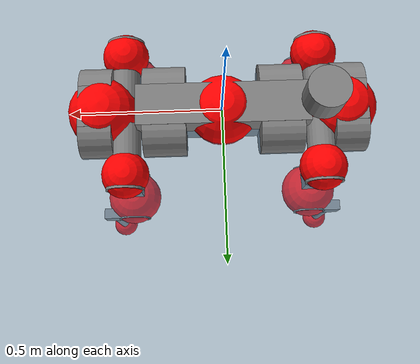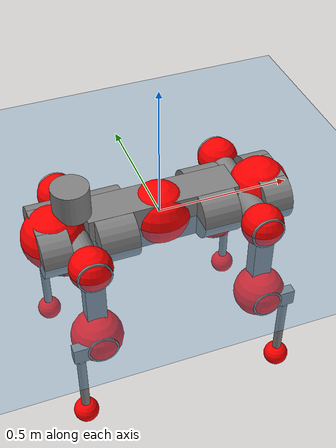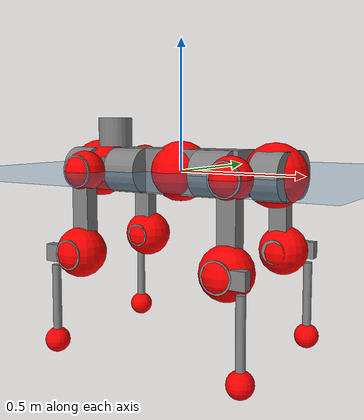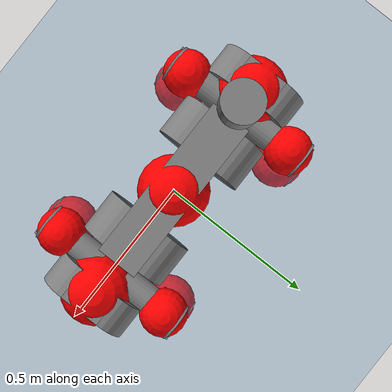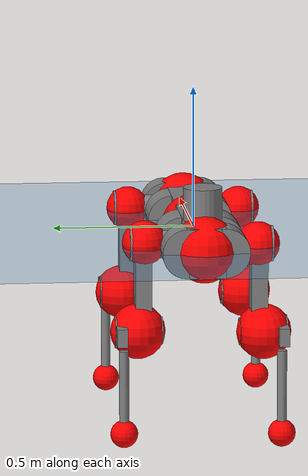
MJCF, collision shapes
<mujoco model="anymal_c">
  <compiler angle="radian" assetdir="assets" balanceinertia="true" inertiafromgeom="false"/>

  <option timestep="0.005" density="1.2" viscosity="2e-05"/>

  <size nkey="1"/>

  <visual>
    <quality shadowsize="8192"/>
    <map shadowclip="0.5"/>
  </visual>

  <default>
    <default class="/">
      <material specular="0" shininess="0.25"/>
      <geom contype="0" conaffinity="0" group="1" solref="-1000 -80"/>
      <site size="0.01 0.005 0.005" group="5"/>
      <general forcelimited="true" forcerange="-80 80" biastype="affine" gainprm="80" biasprm="0 -80 -2"/>
      <default class="anymal_c">
        <joint armature="0.01" damping="0.01" frictionloss="0.1"/>
        <default class="visual">
          <geom type="mesh" group="2"/>
          <default class="visual_zflip"/>
        </default>
        <default class="collision">
          <geom type="cylinder" group="3"/>
          <default class="foot">
            <geom size="0.03 0 0" type="sphere" condim="6" priority="1" friction="0.8 0.02 0.01" solimp="0.015 1 0.03"/>
          </default>
        </default>
      </default>
      <default class="reward_collision_sphere">
        <geom group="5" rgba="1 0 0 1"/>
      </default>
    </default>
  </default>

  <asset>
    <texture type="skybox" colorspace="auto" name="//unnamed_texture_0" builtin="gradient" rgb1="0.95 0.95 0.95" rgb2="0.95 0.95 0.95" width="100" height="600"/>
    <texture type="2d" colorspace="auto" name="texplane" builtin="checker" rgb1="0.345 0.575 0.748" rgb2="0.345 0.575 0.748" markrgb="1 1 1" width="512" height="512"/>
    <texture type="2d" colorspace="linear" name="base" file="base.png"/>
    <texture type="2d" colorspace="linear" name="top_shell" file="top_shell.png"/>
    <texture type="2d" colorspace="linear" name="bottom_shell" file="bottom_shell.png"/>
    <texture type="2d" colorspace="linear" name="remote" file="remote.png"/>
    <texture type="2d" colorspace="linear" name="hatch" file="hatch.png"/>
    <texture type="2d" colorspace="linear" name="handle" file="handle.png"/>
    <texture type="2d" colorspace="linear" name="face" file="face.png"/>
    <texture type="2d" colorspace="linear" name="battery" file="battery.png"/>
    <texture type="2d" colorspace="linear" name="lidar_cage" file="lidar_cage.png"/>
    <texture type="2d" colorspace="linear" name="depth_camera" file="depth_camera.png"/>
    <texture type="2d" colorspace="linear" name="wide_angle_camera" file="wide_angle_camera.png"/>
    <texture type="2d" colorspace="linear" name="lidar" file="lidar.png"/>
    <texture type="2d" colorspace="linear" name="drive" file="drive.png"/>
    <texture type="2d" colorspace="linear" name="hip_l" file="hip_l.png"/>
    <texture type="2d" colorspace="linear" name="shank_l" file="shank_l.png"/>
    <texture type="2d" colorspace="linear" name="foot" file="foot.png"/>
    <texture type="2d" colorspace="linear" name="thigh" file="thigh.png"/>
    <texture type="2d" colorspace="linear" name="shank_r" file="shank_r.png"/>
    <texture type="2d" colorspace="linear" name="hip_r" file="hip_r.png"/>
    <material name="MatPlane" class="/" texture="texplane" texuniform="true" texrepeat="2 2" specular="0.9" shininess="0.5"/>
    <material name="black_plastic" class="/" rgba="0.007 0.007 0.007 1"/>
    <material name="green" class="/" rgba="0.052 0.178 0.033 1"/>
    <material name="red" class="/" rgba="0.178 0.006 0.005 1"/>
    <material name="yellow" class="/" rgba="0.178 0.119 0.006 1"/>
    <material name="lwl" class="/" rgba="0.8 0.8 0.8 1"/>
    <material name="base" class="/" texture="base"/>
    <material name="top_shell" class="/" texture="top_shell"/>
    <material name="bottom_shell" class="/" texture="bottom_shell"/>
    <material name="hip_l" class="/" texture="hip_l"/>
    <material name="thigh" class="/" texture="thigh"/>
    <material name="shank_l" class="/" texture="shank_l"/>
    <material name="foot" class="/" texture="foot"/>
    <material name="hip_r" class="/" texture="hip_r"/>
    <material name="shank" class="/" texture="shank_r"/>
    <material name="hatch" class="/" texture="hatch"/>
    <material name="remote" class="/" texture="remote"/>
    <material name="handle" class="/" texture="handle"/>
    <material name="face" class="/" texture="face"/>
    <material name="depth_camera" class="/" texture="depth_camera"/>
    <material name="wide_angle_camera" class="/" texture="wide_angle_camera"/>
    <material name="battery" class="/" texture="battery"/>
    <material name="lidar_cage" class="/" texture="lidar_cage"/>
    <material name="lidar" class="/" texture="lidar"/>
    <material name="drive" class="/" texture="drive"/>
    <mesh name="base_0" class="/" file="base_0.obj"/>
    <mesh name="base_1" class="/" file="base_1.obj"/>
    <mesh name="base_2" class="/" file="base_2.obj"/>
    <mesh name="base_3" class="/" file="base_3.obj"/>
    <mesh name="base_4" class="/" file="base_4.obj"/>
    <mesh name="base_5" class="/" file="base_5.obj"/>
    <mesh name="top_shell" class="/" file="top_shell.obj"/>
    <mesh name="bottom_shell" class="/" file="bottom_shell.obj"/>
    <mesh name="remote" class="/" file="remote.obj"/>
    <mesh name="handle" class="/" file="handle.obj"/>
    <mesh name="face" class="/" file="face.obj"/>
    <mesh name="wide_angle_camera" class="/" file="wide_angle_camera.obj"/>
    <mesh name="depth_camera" class="/" file="depth_camera.obj"/>
    <mesh name="battery" class="/" file="battery.obj"/>
    <mesh name="lidar_cage" class="/" file="lidar_cage.obj"/>
    <mesh name="lidar" class="/" file="lidar.obj"/>
    <mesh name="drive" class="/" file="drive.obj"/>
    <mesh name="hip_l" class="/" file="hip_l.obj"/>
    <mesh name="thigh" class="/" file="thigh.obj"/>
    <mesh name="shank_l" class="/" file="shank_l.obj"/>
    <mesh name="foot" class="/" file="foot.obj"/>
    <mesh name="hip_r" class="/" file="hip_r.obj"/>
    <mesh name="hatch" class="/" file="hatch.obj"/>
    <mesh name="shank_r" class="/" file="shank_r.obj"/>
  </asset>

  <worldbody>
    <geom name="floor" class="/" size="100 100 0.125" type="plane" group="0" material="MatPlane"/>
    <light name="toplight_shadow" class="/" pos="0 0 5" dir="0.0990148 0.0990148 -0.990148" type="directional" ambient="0.04 0.04 0.04" diffuse="0.55 0.55 0.55" specular="0.12 0.12 0.12"/>
    <light name="toplight_fill" class="/" pos="0 0 5" dir="0.0990148 0.0990148 -0.990148" type="directional" castshadow="false" ambient="0.04 0.04 0.04" diffuse="0.3 0.3 0.3" specular="0.08 0.08 0.08"/>
    <body name="trunk" childclass="anymal_c" pos="-0.00119052 -0.000567122 0.000251659" quat="1 -0.000228479 -0.000229806 0.000223827">
      <inertial pos="0.0110186 0.00583685 0.0557724" quat="0.506234 0.497396 0.496527 0.499786" mass="15.7933" diaginertia="0.323579 0.410891 0.363047"/>
      <joint name="//unnamed_joint_0" type="free" armature="0" damping="0" frictionloss="0"/>
      <geom name="//unnamed_geom_1" class="visual" material="green" mesh="base_0"/>
      <geom name="//unnamed_geom_2" class="visual" material="yellow" mesh="base_1"/>
      <geom name="//unnamed_geom_3" class="visual" material="red" mesh="base_2"/>
      <geom name="//unnamed_geom_4" class="visual" material="black_plastic" mesh="base_3"/>
      <geom name="//unnamed_geom_5" class="visual" material="lwl" mesh="base_4"/>
      <geom name="//unnamed_geom_6" class="visual" material="base" mesh="base_5"/>
      <geom name="trunk_1" class="collision" size="0.279493 0.0674639 0.0867393" type="box"/>
      <geom name="trunk_2" class="collision" size="0.0867393 0.0698733" pos="0.18944 0.0644036 0" quat="0.707107 0 0.707107 0"/>
      <geom name="trunk_3" class="collision" size="0.0867393 0.0698733" pos="-0.18944 0.0644036 0" quat="0.707107 0 0.707107 0"/>
      <geom name="trunk_4" class="collision" size="0.0867393 0.0698733" pos="0.18944 -0.0644036 0" quat="0.707107 0 0.707107 0"/>
      <geom name="trunk_5" class="collision" size="0.0867393 0.0698733" pos="-0.18944 -0.0644036 0" quat="0.707107 0 0.707107 0"/>
      <geom name="//unnamed_geom_12" class="visual" material="top_shell" mesh="top_shell"/>
      <geom name="//unnamed_geom_13" class="visual" material="bottom_shell" mesh="bottom_shell"/>
      <geom name="//unnamed_geom_14" class="visual" material="remote" mesh="remote"/>
      <geom name="//unnamed_geom_15" class="visual" material="handle" mesh="handle"/>
      <geom name="//unnamed_geom_16" class="visual" pos="0.361025 0 0" quat="1 0 0 0" material="face" mesh="face"/>
      <geom name="trunk_6" class="collision" size="0.0530073 0.0674639 0.0867393" pos="0.408929 0 0" type="box"/>
      <geom name="//unnamed_geom_18" class="collision" size="0.0867393 0.0530073" pos="0.408929 0.0644036 0" quat="0.707107 0 0.707107 0"/>
      <geom name="//unnamed_geom_19" class="collision" size="0.0867393 0.0530073" pos="0.408929 -0.0644036 0" quat="0.707107 0 0.707107 0"/>
      <geom name="//unnamed_geom_20" class="visual" pos="0.402101 0 -0.0338704" quat="0.965926 0 0.258819 0" material="depth_camera" mesh="depth_camera"/>
      <geom name="//unnamed_geom_21" class="visual" pos="0.446817 0 0.016471" material="wide_angle_camera" mesh="wide_angle_camera"/>
      <geom name="//unnamed_geom_22" class="visual_zflip" pos="-0.361025 0 0" quat="0 0 0 1" material="face" mesh="face"/>
      <geom name="trunk_7" class="collision" size="0.0530073 0.0674639 0.0867393" pos="-0.408929 0 0" quat="0 0 0 1" type="box"/>
      <geom name="//unnamed_geom_24" class="collision" size="0.0867393 0.0530073" pos="-0.408929 -0.0644036 0" quat="0 -0.707107 0 0.707107"/>
      <geom name="//unnamed_geom_25" class="collision" size="0.0867393 0.0530073" pos="-0.408929 0.0644036 0" quat="0 -0.707107 0 0.707107"/>
      <geom name="//unnamed_geom_26" class="visual" pos="-0.402101 0 -0.0338704" quat="0 -0.258819 0 0.965926" material="depth_camera" mesh="depth_camera"/>
      <geom name="//unnamed_geom_27" class="visual_zflip" pos="-0.446817 0 0.016471" quat="0 0 0 1" material="wide_angle_camera" mesh="wide_angle_camera"/>
      <geom name="//unnamed_geom_28" class="visual" material="battery" mesh="battery"/>
      <geom name="//unnamed_geom_29" class="visual" pos="0 0.0710005 0.0302203" quat="0.683013 -0.183013 0.183013 0.683013" material="depth_camera" mesh="depth_camera"/>
      <geom name="//unnamed_geom_30" class="visual" pos="0 -0.0710005 0.0302203" quat="0.683013 0.183013 0.183013 -0.683013" material="depth_camera" mesh="depth_camera"/>
      <geom name="//unnamed_geom_31" class="visual" pos="-0.31704 0 0.0808698" quat="1 0 0 0" material="lidar_cage" mesh="lidar_cage"/>
      <geom name="trunk_8" class="collision" size="0.0674639 0.0578262" pos="-0.31704 0 0.146886"/>
      <geom name="//unnamed_geom_33" class="visual" pos="-0.31704 1.92755e-05 0.156458" quat="0.707107 0 0 -0.707107" material="lidar" mesh="lidar"/>
      <geom name="//unnamed_geom_34" class="visual" pos="0.261209 0.0957494 -3.10878e-09" quat="0.258819 0.965926 0 0" material="drive" mesh="drive"/>
      <geom name="//unnamed_geom_35" class="visual" pos="0.261209 -0.0957494 3.10878e-09" quat="0.258819 -0.965926 0 0" material="drive" mesh="drive"/>
      <geom name="//unnamed_geom_36" class="visual" pos="-0.261209 0.0957494 3.10878e-09" quat="0 0 0.965926 -0.258819" material="drive" mesh="drive"/>
      <geom name="//unnamed_geom_37" class="visual" pos="-0.261209 -0.0957494 -3.10878e-09" quat="0 0 -0.965926 -0.258819" material="drive" mesh="drive"/>
      <geom name="//unnamed_geom_38" class="visual" pos="0.101035 0 0.0803196" quat="1 0 0 0" material="hatch" mesh="hatch"/>
      <geom name="//unnamed_geom_39" class="reward_collision_sphere" size="0.115652"/>
      <geom name="//unnamed_geom_40" class="reward_collision_sphere" size="0.115652" pos="0.391945 0 0"/>
      <geom name="//unnamed_geom_41" class="reward_collision_sphere" size="0.115652" pos="-0.391945 0 0"/>
      <site name="imu" pos="0.181968 0.00797593 0.0853837" size="0.0096377"/>
      <camera name="track" pos="0 -1.8401 0" quat="0.707107 0.707107 0 0" mode="trackcom"/>
      <camera name="ego_camera" pos="0.391945 0 -0.0440108" quat="-0.5 -0.5 0.5 0.5"/>
      <body name="LF_HIP" pos="0.265622 0.100475 0.00130427" quat="0.257952 0.966157 -0.000713633 0.000109791">
        <inertial pos="0.0498147 -0.00977072 -0.0111351" quat="-0.130003 0.708691 -0.137533 0.679662" mass="2.71316" diaginertia="0.00329263 0.00382475 0.00584292"/>
        <joint name="LF_HAA" pos="0 0 0" axis="0.999903 0.0126869 0.00575816" stiffness="0.014981" range="-0.712624 0.479836" armature="0.0104628" damping="0" frictionloss="0.111648"/>
        <geom name="//unnamed_geom_42" class="visual" pos="0 -0.000182875 3.00371e-05" quat="0.258819 -0.965926 0 0" material="hip_l" mesh="hip_l"/>
        <geom name="//unnamed_geom_43" class="visual" pos="0.0521722 -0.0639277 -0.0382417" quat="0.183013 -0.683013 0.683013 0.183013" material="drive" mesh="drive"/>
        <geom name="//unnamed_geom_44" class="collision" size="0.0481885 0.0674639" pos="0.0521722 -0.0110036 -0.00759736" quat="-0.353553 -0.612372 0.612372 -0.353553"/>
        <body name="LF_THIGH" pos="0.0541857 -0.0743714 -0.0472431" quat="0.182276 -0.685172 0.681454 0.18148">
          <inertial pos="0.0289942 -0.000252348 -0.272134" quat="0.994237 0.0118485 -0.0808654 0.0693743" mass="2.7948" diaginertia="0.0148765 0.0211408 0.00662738"/>
          <joint name="LF_HFE" pos="0 0 0" axis="0.999993 0.00152293 -0.00350164" stiffness="0.00805688" range="-3.25894 3.0785" armature="0.00913202" damping="0" frictionloss="0.106249"/>
          <geom name="//unnamed_geom_45" class="visual" pos="-0.000976161 -1.5382e-06 0" quat="0.707107 0 0 -0.707107" material="thigh" mesh="thigh"/>
          <geom name="//unnamed_geom_46" class="collision" size="0.062645 0.0385508" pos="0.0348395 0 0" quat="0.5 0.5 -0.5 -0.5"/>
          <geom name="//unnamed_geom_47" class="collision" size="0.0361414 0.0289131 0.136194" pos="0.0261297 0 -0.155483" quat="0.707107 0 0 -0.707107" type="box"/>
          <geom name="//unnamed_geom_48" class="visual" pos="0.0873601 0 -0.313577" quat="1 0 0 0" material="drive" mesh="drive"/>
          <geom name="//unnamed_geom_49" class="collision" size="0.0481885 0.0674639" pos="0.0263909 0 -0.313577" quat="0.707107 0 0.707107 0"/>
          <geom name="//unnamed_geom_50" class="reward_collision_sphere" size="0.0771016" pos="0.0217747 0 0"/>
          <body name="LF_SHANK" pos="0.0878312 -0.00624547 -0.31691" quat="1 -0.000375287 -0.000141959 0.000652461">
            <inertial pos="0.00463483 -0.0546234 -0.0876489" quat="0.993008 -0.116097 -0.00363723 -0.0210535" mass="0.514887" diaginertia="0.00530136 0.00610592 0.00179825"/>
            <joint name="LF_KFE" pos="0 0 0" axis="0.999906 -0.00739533 0.0115204" stiffness="0.0281055" range="-3.20006 3.15023" armature="0.00981301" damping="0.0216004" frictionloss="0.100257"/>
            <geom name="//unnamed_geom_51" class="visual" pos="-0.000318305 -0.00169722 0" quat="0.707107 0 0 -0.707107" material="shank_l" mesh="shank_l"/>
            <geom name="LF_kfe_act" class="collision" size="0.0578262 0.0192754" pos="0.0174198 0 0" quat="0.5 0.5 -0.5 -0.5"/>
            <geom name="//unnamed_geom_53" class="collision" size="0.0554158 0.0325272 0.0183116" pos="0.0174198 -0.052902 0" quat="0.5 0.5 -0.5 -0.5" type="box"/>
            <geom name="//unnamed_geom_54" class="visual" pos="0.0113665 -0.0814655 -0.371858" quat="0.382683 0 0 -0.92388" material="foot" mesh="foot"/>
            <geom name="LF_calf" class="collision" size="0.016866 0.136134" pos="0.0113664 -0.0809185 -0.185929" quat="0.707107 0 0 -0.707107"/>
            <geom name="LF_foot" class="foot" size="0.0315186" pos="0.0113664 -0.0809185 -0.347102" quat="0.707107 0 0 -0.707107"/>
            <geom name="//unnamed_geom_57" class="reward_collision_sphere" size="0.096377" pos="-0.0435494 0 0"/>
            <geom name="//unnamed_geom_58" class="reward_collision_sphere" size="0.0481885" pos="0.0113664 -0.0809185 -0.347102"/>
            <site name="LF_foot" class="foot" pos="0.0113664 -0.0809185 -0.347102" quat="0.707107 0 0 -0.707107" size="0.0096377"/>
          </body>
        </body>
      </body>
      <body name="RF_HIP" pos="0.268497 -0.0952224 -0.0017316" quat="0.259157 -0.965835 9.50408e-06 -0.000177843">
        <inertial pos="0.0521814 0.0231719 -0.00609934" quat="0.131764 0.704546 0.142383 0.682628" mass="2.48338" diaginertia="0.00318725 0.00304088 0.00572064"/>
        <joint name="RF_HAA" pos="0 0 0" axis="0.999705 -0.0242212 -0.00175962" stiffness="0.00208198" range="-0.453776 0.734284" armature="0.00926983" damping="0.0275244" frictionloss="0.0964965"/>
        <geom name="//unnamed_geom_59" class="visual" pos="0 0.000182874 3.0037e-05" quat="0.258819 0.965926 0 0" material="hip_r" mesh="hip_r"/>
        <geom name="//unnamed_geom_60" class="visual" pos="0.0521722 0.0639277 -0.0382417" quat="0.183013 0.683013 0.683013 -0.183013" material="drive" mesh="drive"/>
        <geom name="//unnamed_geom_61" class="collision" size="0.0481885 0.0674639" pos="0.0521722 0.0110036 -0.00759736" quat="-0.353553 0.612372 0.612372 0.353553"/>
        <body name="RF_THIGH" pos="0.0505042 0.0683304 -0.0406533" quat="0.181758 0.681721 0.684185 -0.184691">
          <inertial pos="0.0198102 -0.000739881 -0.268278" quat="0.993151 0.00363875 -0.0833651 0.081787" mass="2.53205" diaginertia="0.0153326 0.020531 0.00601744"/>
          <joint name="RF_HFE" pos="0 0 0" axis="0.999976 -0.00346232 0.00602805" stiffness="0.0149847" range="-3.13603 3.10676" armature="0.0109145" damping="0.00928032" frictionloss="0.094016"/>
          <geom name="//unnamed_geom_62" class="visual" pos="-0.000976161 -1.5382e-06 0" quat="0.707107 0 0 -0.707107" material="thigh" mesh="thigh"/>
          <geom name="//unnamed_geom_63" class="collision" size="0.062645 0.0385508" pos="0.0348395 0 0" quat="0.5 0.5 0.5 0.5"/>
          <geom name="//unnamed_geom_64" class="collision" size="0.0361414 0.0289131 0.136194" pos="0.0261297 0 -0.155483" quat="0.707107 0 0 0.707107" type="box"/>
          <geom name="//unnamed_geom_65" class="visual" pos="0.0873601 0 -0.313577" quat="1 0 0 0" material="drive" mesh="drive"/>
          <geom name="//unnamed_geom_66" class="collision" size="0.0481885 0.0674639" pos="0.0263909 0 -0.313577" quat="0.707107 0 0.707107 0"/>
          <geom name="//unnamed_geom_67" class="reward_collision_sphere" size="0.0771016" pos="0.0217747 0 0"/>
          <body name="RF_SHANK" pos="0.0895177 0.000198481 -0.312461" quat="0.999999 -0.000744806 0.000290471 0.000660794">
            <inertial pos="0.00917603 0.0562988 -0.0885136" quat="0.994066 0.102893 0.0333747 0.0115113" mass="0.482596" diaginertia="0.00477722 0.00580449 0.00169899"/>
            <joint name="RF_KFE" pos="0 0 0" axis="0.999998 0.000663368 -0.00165204" stiffness="0.0341963" range="-2.99548 3.18759" armature="0.0070965" damping="0" frictionloss="0.0923817"/>
            <geom name="//unnamed_geom_68" class="visual" pos="-0.000318303 0.00169721 0" quat="0.707107 0 0 0.707107" material="shank" mesh="shank_r"/>
            <geom name="RF_kfe_act" class="collision" size="0.0578262 0.0192754" pos="0.0174198 0 0" quat="0.5 0.5 0.5 0.5"/>
            <geom name="//unnamed_geom_70" class="collision" size="0.0554158 0.0325272 0.0183116" pos="0.0174198 0.052902 0" quat="0.5 0.5 0.5 0.5" type="box"/>
            <geom name="//unnamed_geom_71" class="visual" pos="0.0113663 0.0814655 -0.371858" quat="0.382683 0 0 0.92388" material="foot" mesh="foot"/>
            <geom name="RF_calf" class="collision" size="0.016866 0.136134" pos="0.0113664 0.0809185 -0.185929" quat="0.707107 0 0 0.707107"/>
            <geom name="RF_foot" class="foot" size="0.0334716" pos="0.0113664 0.0809185 -0.347102" quat="0.707107 0 0 0.707107"/>
            <geom name="//unnamed_geom_74" class="reward_collision_sphere" size="0.096377" pos="-0.0435494 0 0"/>
            <geom name="//unnamed_geom_75" class="reward_collision_sphere" size="0.0481885" pos="0.0113664 0.0809185 -0.347102"/>
            <site name="RF_foot" class="foot" pos="0.0113664 0.0809185 -0.347102" quat="0.707107 0 0 0.707107" size="0.0096377"/>
          </body>
        </body>
      </body>
      <body name="LH_HIP" pos="-0.267264 0.0993713 0.00564608" quat="0.000236187 0.000353914 0.965815 -0.259232">
        <inertial pos="0.0498165 0.0106512 -0.00148425" quat="0.147683 0.69125 0.133474 0.694657" mass="2.26823" diaginertia="0.00236394 0.00289015 0.00492566"/>
        <joint name="LH_HAA" pos="0 0 0" axis="0.999711 -0.0239692 0.00175699" stiffness="0.00188605" range="-0.514209 0.725181" armature="0.00832173" damping="0.0382257" frictionloss="0.0975366"/>
        <geom name="//unnamed_geom_76" class="visual" pos="0 0.000182874 3.0037e-05" quat="-0.258819 -0.965926 0 0" material="hip_r" mesh="hip_r"/>
        <geom name="//unnamed_geom_77" class="visual" pos="0.0521722 0.0639277 -0.0382417" quat="0.183013 0.683013 0.683013 -0.183013" material="drive" mesh="drive"/>
        <geom name="//unnamed_geom_78" class="collision" size="0.0481885 0.0674639" pos="0.0521722 0.0110036 -0.00759736" quat="-0.353553 0.612372 0.612372 0.353553"/>
        <body name="LH_THIGH" pos="0.0506536 0.0676778 -0.0469773" quat="0.183024 0.68303 0.682979 -0.183064">
          <inertial pos="0.035667 0.000354876 -0.262655" quat="0.992476 -0.00488987 -0.083065 0.0898167" mass="2.88504" diaginertia="0.0174872 0.0196759 0.0070506"/>
          <joint name="LH_HFE" pos="0 0 0" axis="0.999972 -0.0072805 0.0019747" range="-3.11145 3.2013" armature="0.0104761" damping="0.0262412" frictionloss="0.0997282"/>
          <geom name="//unnamed_geom_79" class="visual" pos="-0.000976161 -1.5382e-06 0" quat="0.707107 0 0 -0.707107" material="thigh" mesh="thigh"/>
          <geom name="//unnamed_geom_80" class="collision" size="0.062645 0.0385508" pos="0.0348395 0 0" quat="0.5 0.5 -0.5 -0.5"/>
          <geom name="//unnamed_geom_81" class="collision" size="0.0361414 0.0289131 0.136194" pos="0.0261297 0 -0.155483" quat="0.707107 0 0 -0.707107" type="box"/>
          <geom name="//unnamed_geom_82" class="visual" pos="0.0873601 0 -0.313577" quat="1 0 0 0" material="drive" mesh="drive"/>
          <geom name="//unnamed_geom_83" class="collision" size="0.0481885 0.0674639" pos="0.0263909 0 -0.313577" quat="0.707107 0 0.707107 0"/>
          <geom name="//unnamed_geom_84" class="reward_collision_sphere" size="0.0771016" pos="0.0217747 0 0"/>
          <body name="LH_SHANK" pos="0.0879494 -0.000172664 -0.314401" quat="1 -4.68342e-06 -7.44293e-05 -3.25679e-05">
            <inertial pos="0.00330426 0.0503039 -0.089208" quat="0.992209 0.118824 -0.0081873 0.0365435" mass="0.471448" diaginertia="0.0047066 0.00501607 0.00161597"/>
            <joint name="LH_KFE" pos="0 0 0" axis="0.999915 0.00174115 -0.0128932" range="-3.25396 3.20867" armature="0.00633434" damping="0" frictionloss="0.121387"/>
            <geom name="//unnamed_geom_85" class="visual" pos="-0.000318303 0.00169721 0" quat="-0.707107 0 0 -0.707107" material="shank" mesh="shank_r"/>
            <geom name="LH_kfe_act" class="collision" size="0.0578262 0.0192754" pos="0.0174198 0 0" quat="0.5 0.5 -0.5 -0.5"/>
            <geom name="//unnamed_geom_87" class="collision" size="0.0554158 0.0325272 0.0183116" pos="0.0174198 0.052902 0" quat="0.5 0.5 -0.5 -0.5" type="box"/>
            <geom name="//unnamed_geom_88" class="visual" pos="0.0113663 0.0814655 -0.371858" quat="-0.382683 0 0 -0.92388" material="foot" mesh="foot"/>
            <geom name="LH_calf" class="collision" size="0.016866 0.136134" pos="0.0113664 0.0809185 -0.185929" quat="0.707107 0 0 -0.707107"/>
            <geom name="LH_foot" class="foot" size="0.0291134" pos="0.0113664 0.0809185 -0.347102" quat="0.707107 0 0 -0.707107"/>
            <geom name="//unnamed_geom_91" class="reward_collision_sphere" size="0.096377" pos="-0.0435494 0 0"/>
            <geom name="//unnamed_geom_92" class="reward_collision_sphere" size="0.0481885" pos="0.0113664 0.0809185 -0.347102"/>
            <site name="LH_foot" class="foot" pos="0.0113664 0.0809185 -0.347102" quat="0.707107 0 0 -0.707107" size="0.0096377"/>
          </body>
        </body>
      </body>
      <body name="RH_HIP" pos="-0.270064 -0.0936627 -0.000345301" quat="-0.000599119 0.000398127 -0.966022 -0.25846">
        <inertial pos="0.0516953 -0.015851 -0.00160444" quat="-0.171871 0.699585 -0.143784 0.678504" mass="2.57506" diaginertia="0.00322198 0.0036222 0.00592098"/>
        <joint name="RH_HAA" pos="0 0 0" axis="0.999439 -0.0332291 -0.00429501" stiffness="0.00341402" range="-0.595246 0.4572" armature="0.00976839" damping="0.017165" frictionloss="0.0977127"/>
        <geom name="//unnamed_geom_93" class="visual" pos="0 -0.000182875 3.00371e-05" quat="-0.258819 0.965926 0 0" material="hip_l" mesh="hip_l"/>
        <geom name="//unnamed_geom_94" class="visual" pos="0.0521722 -0.0639277 -0.0382417" quat="-0.183013 0.683013 -0.683013 -0.183013" material="drive" mesh="drive"/>
        <geom name="//unnamed_geom_95" class="collision" size="0.0481885 0.0674639" pos="0.0521722 -0.0110036 -0.00759736" quat="0.353553 0.612372 -0.612372 0.353553"/>
        <body name="RH_THIGH" pos="0.0443956 -0.0666867 -0.0399112" quat="-0.183172 0.684545 -0.681938 -0.181129">
          <inertial pos="0.0289166 -0.0022361 -0.268901" quat="0.993267 -0.00335485 -0.0817707 0.0819992" mass="2.99152" diaginertia="0.0165183 0.0198429 0.0067926"/>
          <joint name="RH_HFE" pos="0 0 0" axis="0.999942 -0.0101872 -0.00346743" range="-3.18743 3.12889" armature="0.00871016" damping="0" frictionloss="0.0970075"/>
          <geom name="//unnamed_geom_96" class="visual" pos="-0.000976161 -1.5382e-06 0" quat="0.707107 0 0 -0.707107" material="thigh" mesh="thigh"/>
          <geom name="//unnamed_geom_97" class="collision" size="0.062645 0.0385508" pos="0.0348395 0 0" quat="0.5 0.5 0.5 0.5"/>
          <geom name="//unnamed_geom_98" class="collision" size="0.0361414 0.0289131 0.136194" pos="0.0261297 0 -0.155483" quat="0.707107 0 0 0.707107" type="box"/>
          <geom name="//unnamed_geom_99" class="visual" pos="0.0873601 0 -0.313577" quat="1 0 0 0" material="drive" mesh="drive"/>
          <geom name="//unnamed_geom_100" class="collision" size="0.0481885 0.0674639" pos="0.0263909 0 -0.313577" quat="0.707107 0 0.707107 0"/>
          <geom name="//unnamed_geom_101" class="reward_collision_sphere" size="0.0771016" pos="0.0217747 0 0"/>
          <body name="RH_SHANK" pos="0.0882718 -0.0048645 -0.312111" quat="0.999994 -0.00141132 -0.00294458 -0.00116475">
            <inertial pos="-0.000214506 -0.0555711 -0.0877582" quat="0.992277 -0.120374 0.0201783 -0.0221313" mass="0.508362" diaginertia="0.00509461 0.00607839 0.00181893"/>
            <joint name="RH_KFE" pos="0 0 0" axis="0.999899 -0.00645673 0.0126654" stiffness="0.00525185" range="-3.12841 3.01038" armature="0.00939031" damping="0" frictionloss="0.0927116"/>
            <geom name="//unnamed_geom_102" class="visual" pos="-0.000318305 -0.00169722 0" quat="0.707107 0 0 -0.707107" material="shank_l" mesh="shank_l"/>
            <geom name="RH_kfe_act" class="collision" size="0.0578262 0.0192754" pos="0.0174198 0 0" quat="0.5 0.5 0.5 0.5"/>
            <geom name="//unnamed_geom_104" class="collision" size="0.0554158 0.0325272 0.0183116" pos="0.0174198 -0.052902 0" quat="0.5 0.5 0.5 0.5" type="box"/>
            <geom name="//unnamed_geom_105" class="visual" pos="0.0113665 -0.0814655 -0.371858" quat="0.382683 0 0 -0.92388" material="foot" mesh="foot"/>
            <geom name="RH_calf" class="collision" size="0.016866 0.136134" pos="0.0113664 -0.0809185 -0.185929" quat="0.707107 0 0 0.707107"/>
            <geom name="RH_foot" class="foot" size="0.0321467" pos="0.0113664 -0.0809185 -0.347102" quat="0.707107 0 0 0.707107"/>
            <geom name="//unnamed_geom_108" class="reward_collision_sphere" size="0.096377" pos="-0.0435494 0 0"/>
            <geom name="//unnamed_geom_109" class="reward_collision_sphere" size="0.0481885" pos="0.0113664 -0.0809185 -0.347102"/>
            <site name="RH_foot" class="foot" pos="0.0113664 -0.0809185 -0.347102" quat="0.707107 0 0 0.707107" size="0.0096377"/>
          </body>
        </body>
      </body>
    </body>
  </worldbody>

  <contact>
    <pair class="/" geom1="floor" geom2="LF_foot" name="//unnamed_contact_0"/>
    <pair class="/" geom1="floor" geom2="RF_foot" name="//unnamed_contact_1"/>
    <pair class="/" geom1="floor" geom2="LH_foot" name="//unnamed_contact_2"/>
    <pair class="/" geom1="floor" geom2="RH_foot" name="//unnamed_contact_3"/>
  </contact>

  <actuator>
    <general name="LF_HAA" class="/" joint="LF_HAA" forcerange="-90.1879 90.1879" gainprm="80.903" biasprm="0 -80.903 -1.99068"/>
    <general name="LF_HFE" class="/" joint="LF_HFE" forcerange="-98.7327 98.7327" gainprm="80.903" biasprm="0 -80.903 -1.99068"/>
    <general name="LF_KFE" class="/" joint="LF_KFE" forcerange="-76.184 76.184" gainprm="80.903" biasprm="0 -80.903 -1.99068"/>
    <general name="RF_HAA" class="/" joint="RF_HAA" forcerange="-83.7299 83.7299" gainprm="80.903" biasprm="0 -80.903 -1.99068"/>
    <general name="RF_HFE" class="/" joint="RF_HFE" forcerange="-66.7877 66.7877" gainprm="80.903" biasprm="0 -80.903 -1.99068"/>
    <general name="RF_KFE" class="/" joint="RF_KFE" forcerange="-72.3099 72.3099" gainprm="80.903" biasprm="0 -80.903 -1.99068"/>
    <general name="LH_HAA" class="/" joint="LH_HAA" forcerange="-79.5702 79.5702" gainprm="80.903" biasprm="0 -80.903 -1.99068"/>
    <general name="LH_HFE" class="/" joint="LH_HFE" forcerange="-88.7044 88.7044" gainprm="80.903" biasprm="0 -80.903 -1.99068"/>
    <general name="LH_KFE" class="/" joint="LH_KFE" forcerange="-77.8483 77.8483" gainprm="80.903" biasprm="0 -80.903 -1.99068"/>
    <general name="RH_HAA" class="/" joint="RH_HAA" forcerange="-72.4871 72.4871" gainprm="80.903" biasprm="0 -80.903 -1.99068"/>
    <general name="RH_HFE" class="/" joint="RH_HFE" forcerange="-60.6385 60.6385" gainprm="80.903" biasprm="0 -80.903 -1.99068"/>
    <general name="RH_KFE" class="/" joint="RH_KFE" forcerange="-81.9445 81.9445" gainprm="80.903" biasprm="0 -80.903 -1.99068"/>
  </actuator>

  <sensor>
    <gyro site="imu" name="imu_angular_velocity"/>
    <velocimeter site="imu" name="imu_linear_velocity"/>
    <framelinvel objtype="site" objname="LF_foot" name="LF_foot_global_linear_velocity"/>
    <framelinvel objtype="site" objname="RF_foot" name="RF_foot_global_linear_velocity"/>
    <framelinvel objtype="site" objname="LH_foot" name="LH_foot_global_linear_velocity"/>
    <framelinvel objtype="site" objname="RH_foot" name="RH_foot_global_linear_velocity"/>
  </sensor>

  <keyframe>
    <key name="home" qpos="0 0 0.55 1 0 0 0 0 0.4 -0.8 0 -0.4 0.8 0 -0.4 0.8 0 0.4 -0.8"/>
  </keyframe>
</mujoco>
